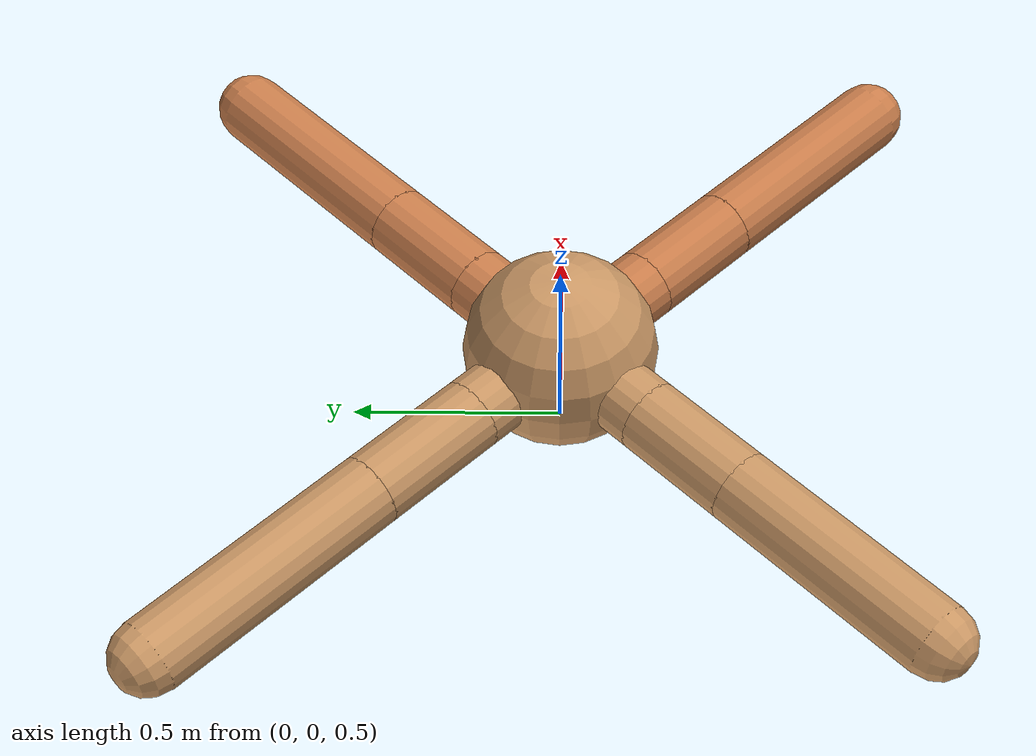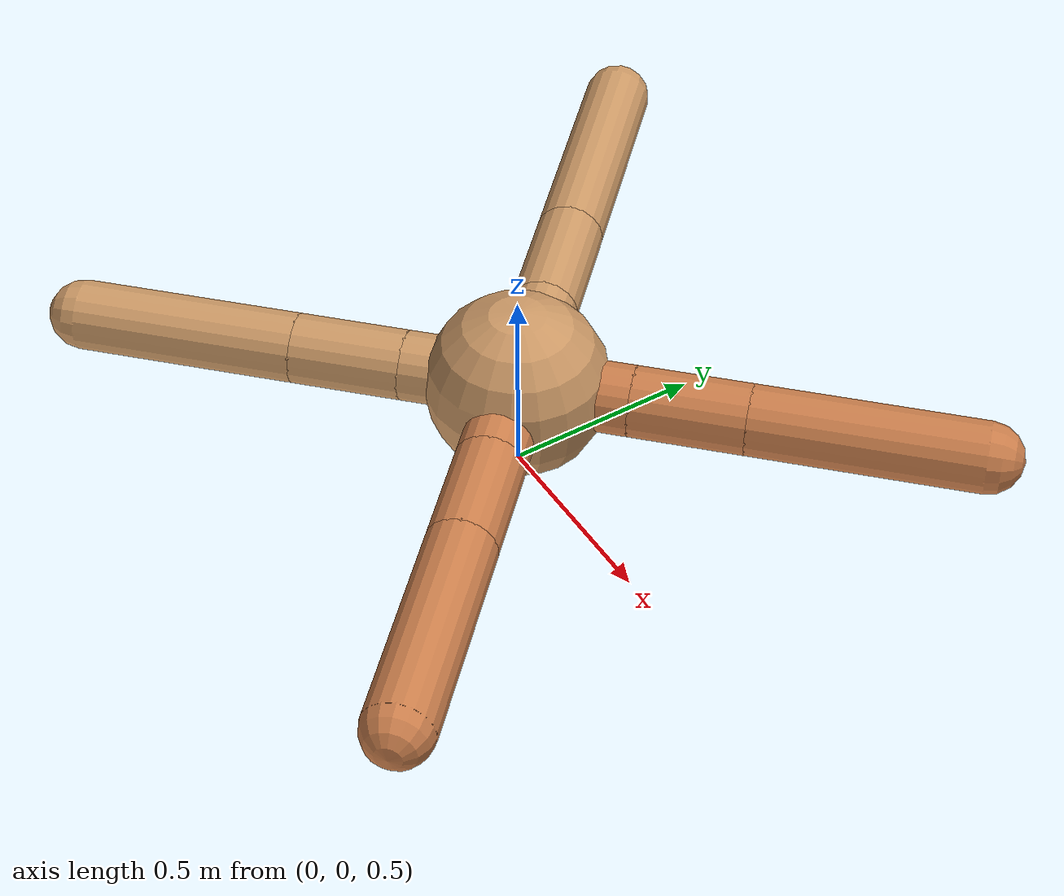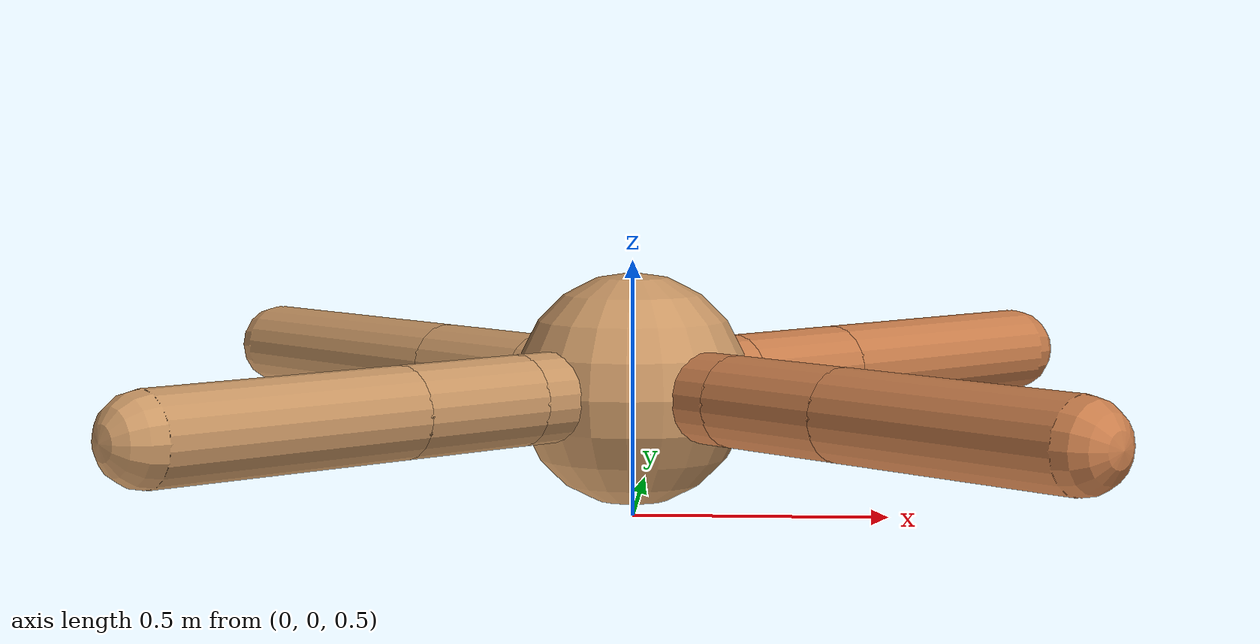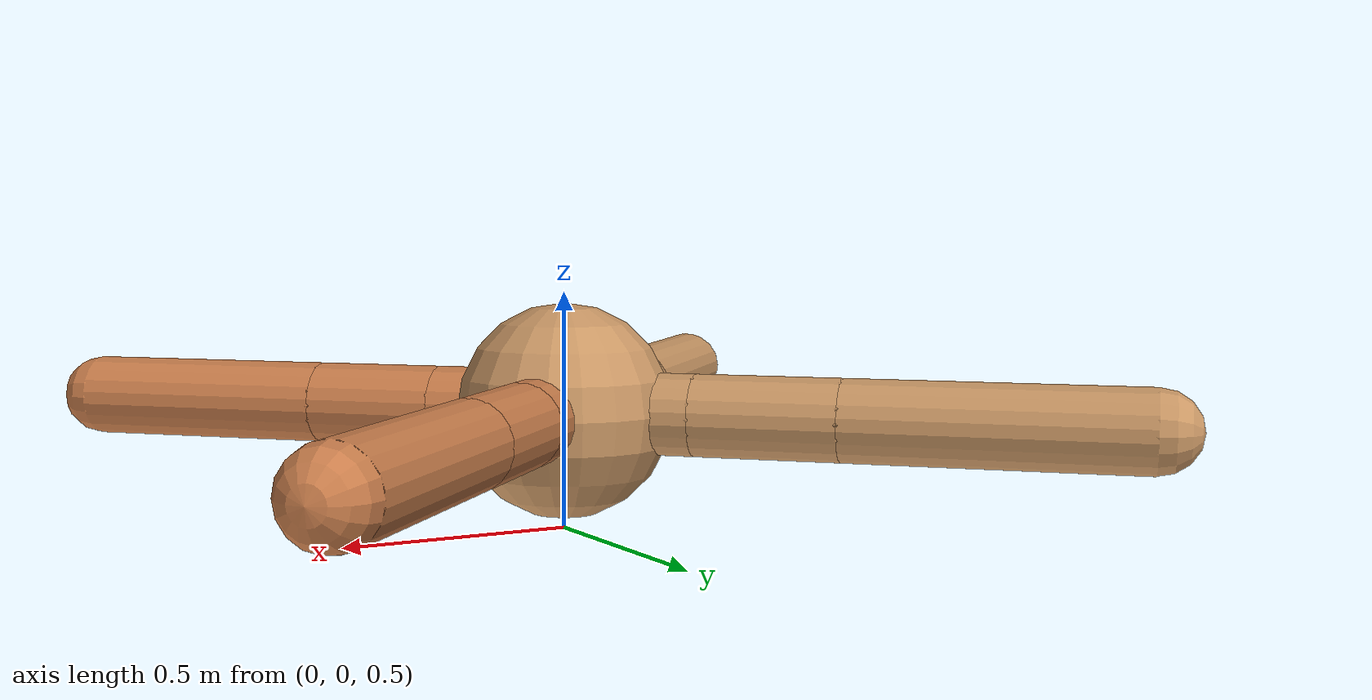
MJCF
<?xml version="1.0" ?>
<mujoco model="ant">

	<compiler angle="degree" coordinate="local" inertiafromgeom="true"/>

	<option integrator="RK4" timestep="0.01"/>

	<custom>

		<numeric data="0.0 0.0 0.55 1.0 0.0 0.0 0.0 0.0 1.0 0.0 -1.0 0.0 -1.0 0.0 1.0" name="init_qpos"/>

	</custom>

	<default>

		<joint armature="1" damping="1" limited="true"/>

		<geom conaffinity="0" condim="3" density="5.0" friction="1.5 0.1 0.1" margin="0.01" rgba="0.8 0.6 0.4 1"/>

	</default>

	<worldbody>

		<body name="torso" pos="0 0 0.75">

			<geom name="torso_geom" pos="0 0 0" size="0.2281375557684868" type="sphere"/>

			<!--joint armature="0" damping="0" limited="false" margin="0.01" name="root" pos="0 0 0" type="free"/-->

			<body name="front_left_leg" pos="0 0 0">

				<geom fromto="0 0 0 0.2 0.2 0" name="aux_1_geom" size="0.08745461954390747" type="capsule" rgba=".8 .5 .3 1"/>

				<body name="aux_1" pos="0.2 0.2 0">

					<joint axis="0 0 1" name="hip_1" pos="0.0 0.0 0.0" range="-40 40" type="hinge"/>

					<geom fromto="0 0 0 0.20095829469273588 0.20095829469273588 0" name="left_leg_geom" size="0.08745461954390747" type="capsule" rgba=".8 .5 .3 1"/>

					<body pos="0.20095829469273588 0.20095829469273588 0" name="front_left_foot">

						<joint axis="-1 1 0" name="ankle_1" pos="0.0 0.0 0.0" range="30 100" type="hinge"/>

						<geom fromto="0 0 0 0.40191658938547176 0.40191658938547176 0" name="left_ankle_geom" size="0.08745461954390747" type="capsule" rgba=".8 .5 .3 1"/>

					</body>

				</body>

			</body>

			<body name="front_right_leg" pos="0 0 0">

				<geom fromto="0 0 0 -0.2 0.2 0" name="aux_2_geom" size="0.08581918692866605" type="capsule"/>

				<body name="aux_2" pos="-0.2 0.2 0">

					<joint axis="0 0 1" name="hip_2" pos="0.0 0.0 0.0" range="-40 40" type="hinge"/>

					<geom fromto="0 0 0 -0.21365522435794915 0.21365522435794915 0" name="right_leg_geom" size="0.08581918692866605" type="capsule"/>

					<body pos="-0.21365522435794915 0.21365522435794915 0" name="front_right_foot">

						<joint axis="1 1 0" name="ankle_2" pos="0.0 0.0 0.0" range="-100 -30" type="hinge"/>

						<geom fromto="0 0 0 -0.4273104487158983 0.4273104487158983 0" name="right_ankle_geom" size="0.08581918692866605" type="capsule"/>

					</body>

				</body>

			</body>

			<body name="left_back_leg" pos="0 0 0">

				<geom fromto="0 0 0 -0.2 -0.2 0" name="aux_3_geom" size="0.08663836078330085" type="capsule"/>

				<body name="aux_3" pos="-0.2 -0.2 0">

					<joint axis="0 0 1" name="hip_3" pos="0.0 0.0 0.0" range="-40 40" type="hinge"/>

					<geom fromto="0 0 0 -0.19491634550213144 -0.19491634550213144 0" name="back_leg_geom" size="0.08663836078330085" type="capsule"/>

					<body pos="-0.19491634550213144 -0.19491634550213144 0" name="left_back_foot">

						<joint axis="-1 1 0" name="ankle_3" pos="0.0 0.0 0.0" range="-100 -30" type="hinge"/>

						<geom fromto="0 0 0 -0.3898326910042629 -0.3898326910042629 0" name="third_ankle_geom" size="0.08663836078330085" type="capsule"/>

					</body>

				</body>

			</body>

			<body name="right_back_leg" pos="0 0 0">

				<geom fromto="0 0 0 0.2 -0.2 0" name="aux_4_geom" size="0.08709094043564893" type="capsule" rgba=".8 .5 .3 1"/>

				<body name="aux_4" pos="0.2 -0.2 0">

					<joint axis="0 0 1" name="hip_4" pos="0.0 0.0 0.0" range="-40 40" type="hinge"/>

					<geom fromto="0 0 0 0.19530970530937927 -0.19530970530937927 0" name="rightback_leg_geom" size="0.08709094043564893" type="capsule" rgba=".8 .5 .3 1"/>

					<body pos="0.19530970530937927 -0.19530970530937927 0" name="right_back_foot">

						<joint axis="1 1 0" name="ankle_4" pos="0.0 0.0 0.0" range="30 100" type="hinge"/>

						<geom fromto="0 0 0 0.39061941061875854 -0.39061941061875854 0" name="fourth_ankle_geom" size="0.08709094043564893" type="capsule" rgba=".8 .5 .3 1"/>

					</body>

				</body>

			</body>

		</body>

	</worldbody>

	<actuator>

		<motor ctrllimited="true" ctrlrange="-1.0 1.0" joint="hip_4" gear="150"/>

		<motor ctrllimited="true" ctrlrange="-1.0 1.0" joint="ankle_4" gear="150"/>

		<motor ctrllimited="true" ctrlrange="-1.0 1.0" joint="hip_1" gear="150"/>

		<motor ctrllimited="true" ctrlrange="-1.0 1.0" joint="ankle_1" gear="150"/>

		<motor ctrllimited="true" ctrlrange="-1.0 1.0" joint="hip_2" gear="150"/>

		<motor ctrllimited="true" ctrlrange="-1.0 1.0" joint="ankle_2" gear="150"/>

		<motor ctrllimited="true" ctrlrange="-1.0 1.0" joint="hip_3" gear="150"/>

		<motor ctrllimited="true" ctrlrange="-1.0 1.0" joint="ankle_3" gear="150"/>

	</actuator>

</mujoco>
